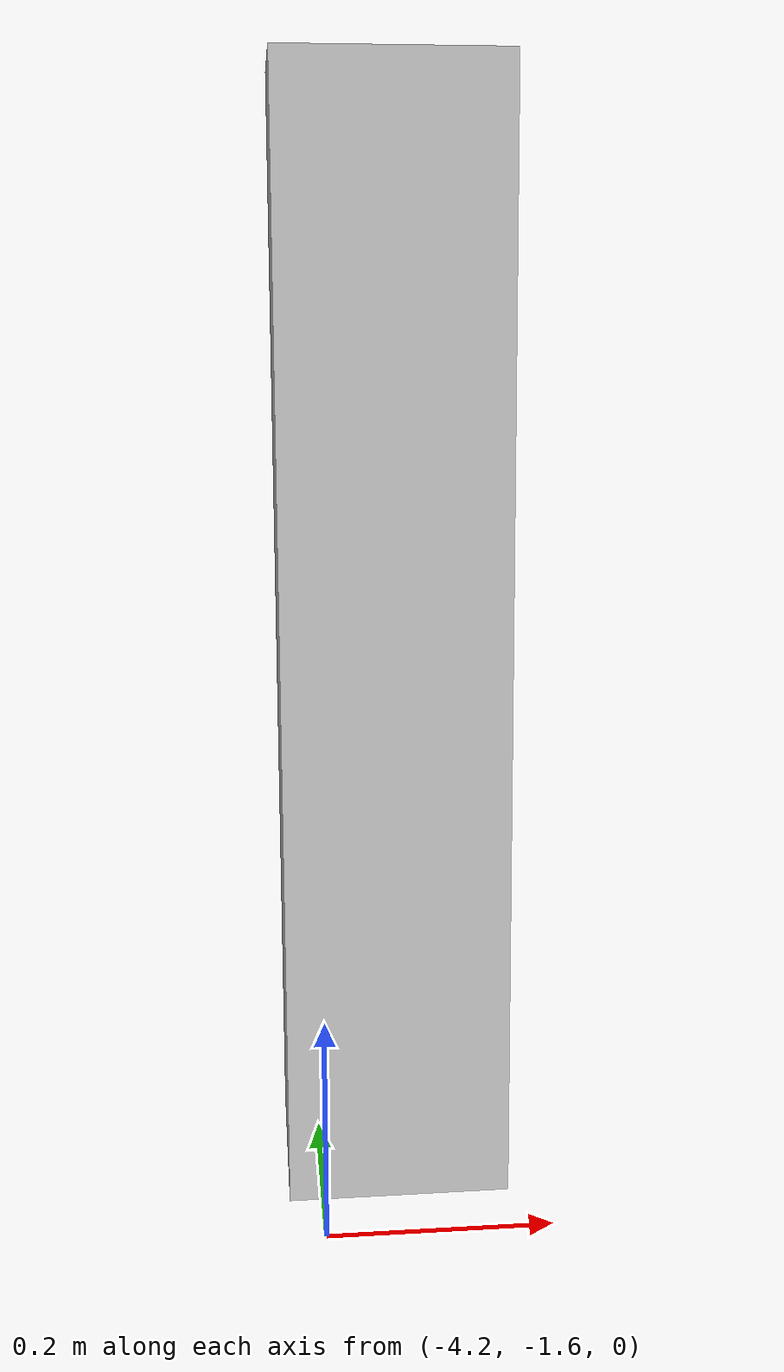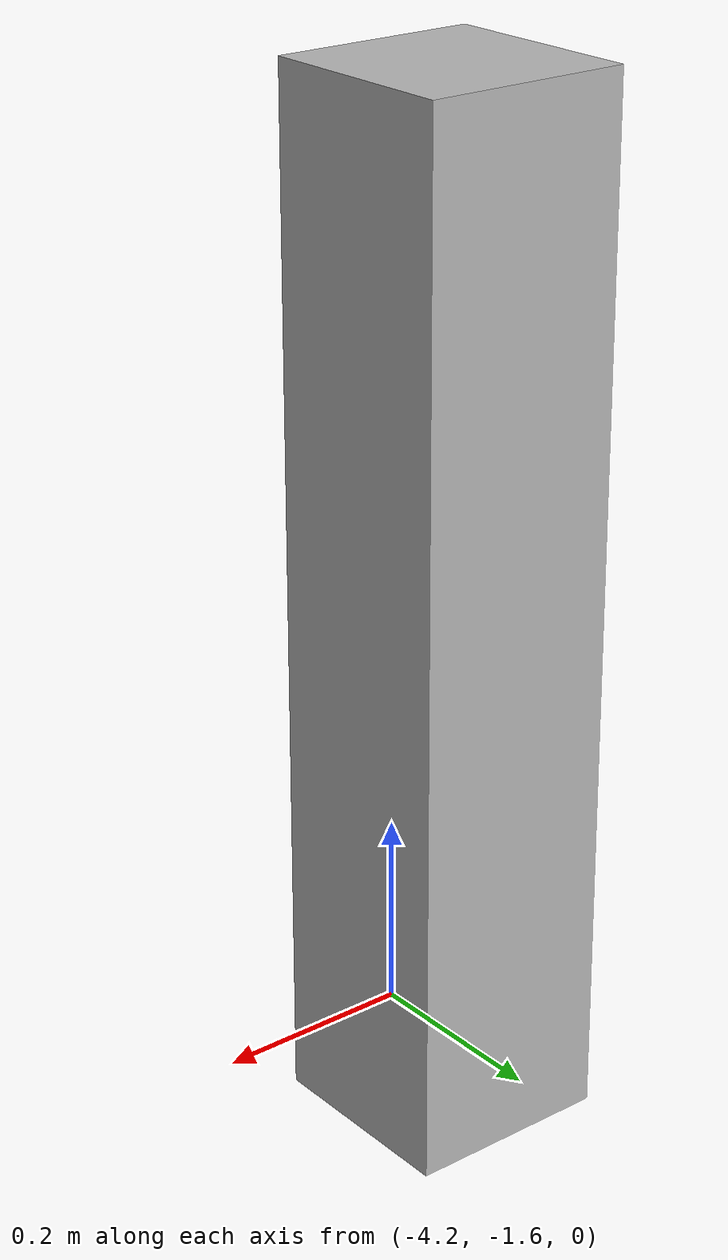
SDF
<sdf version='1.6'>
  <model name='moving_box'>
      <pose frame=''>-4.131300 -1.438250 0.5 0 0 0</pose>
      <link name='link'>
        <collision name='collision'>
          <geometry>
            <box>
              <size>0.2 0.2 0.999997</size>
            </box>
          </geometry>
          <max_contacts>10</max_contacts>
          <surface>
            <contact>
              <ode/>
              <collide_without_contact>1</collide_without_contact>
            </contact>
            <bounce/>
            <friction>
              <torsional>
                <ode/>
              </torsional>
              <ode/>
            </friction>
          </surface>
        </collision>
        <visual name='visual'>
          <geometry>
            <box>
              <size>0.2 0.2 0.999997</size>
            </box>
          </geometry>
        </visual>
        <sensor name='my_contact' type='contact'>
          <plugin name="my_plugin" filename="libcontact.so"/>
          <contact>
            <collision>collision</collision>
          </contact>
          <update_rate>1</update_rate>
        </sensor>
        <self_collide>0</self_collide>
        <inertial>
          <inertia>
            <ixx>1</ixx>
            <ixy>0</ixy>
            <ixz>0</ixz>
            <iyy>1</iyy>
            <iyz>0</iyz>
            <izz>1</izz>
          </inertia>
          <mass>1</mass>
        </inertial>
        <kinematic>0</kinematic>
        <gravity>0</gravity>
      </link>
      <plugin name='model_push' filename='libmodel_push.so'/>
    </model>
</sdf>
